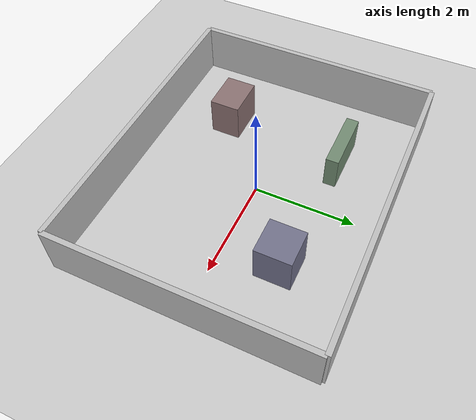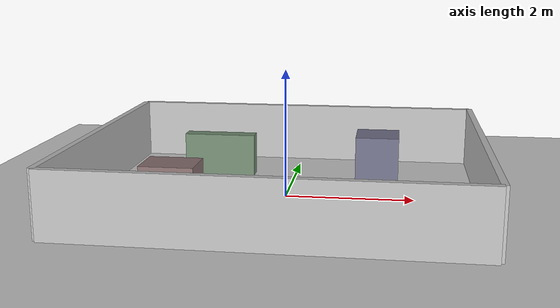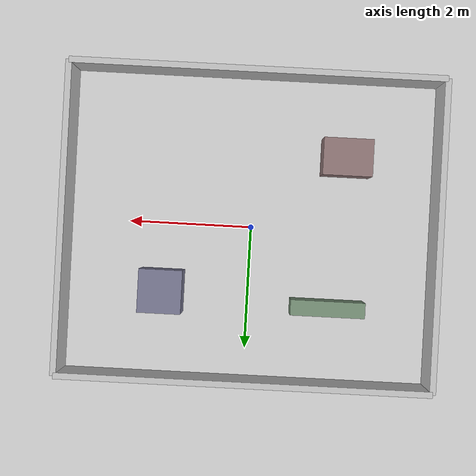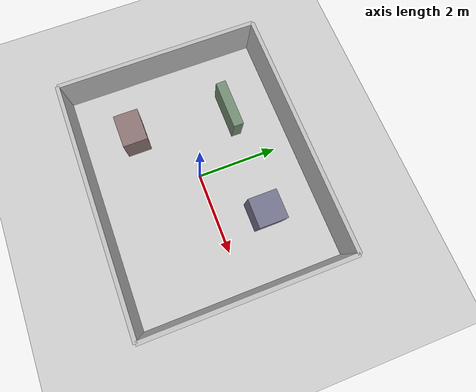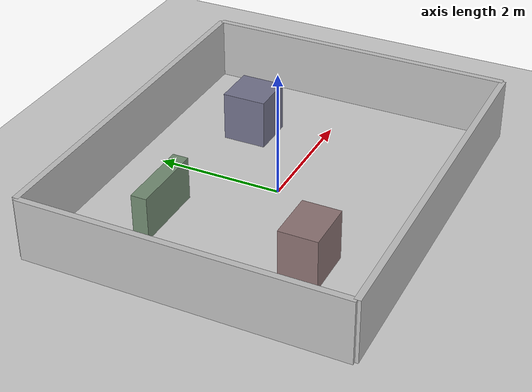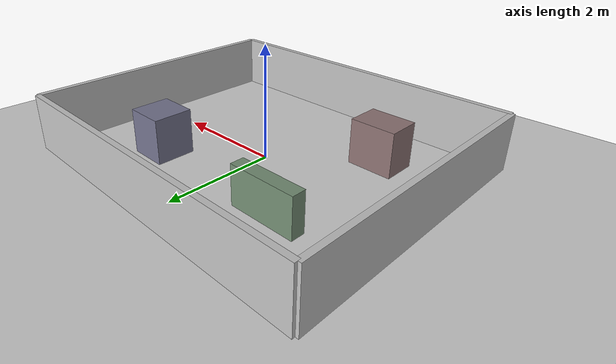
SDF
<?xml version="1.0" ?>
<sdf version="1.6">

  <world name="default">

    <!-- Stable physics                    -->

    <physics name="stable_physics" type="ode">

      <max_step_size>0.0005</max_step_size>
      <real_time_update_rate>1000</real_time_update_rate>

      <ode>
        <solver>
          <type>quick</type>
          <iters>100</iters>
        </solver>
      </ode>

    </physics>

    <!-- Scene                             -->

    <scene>

      <ambient>0.8 0.8 0.8 1</ambient>

      <background>0.85 0.85 0.85 1</background>

      <shadows>true</shadows>

    </scene>

    <!-- Lighting                          -->

    <light name="sun" type="directional">

      <cast_shadows>true</cast_shadows>

      <pose>0 0 10 0 0 0</pose>

      <diffuse>0.9 0.9 0.9 1</diffuse>

      <specular>0.3 0.3 0.3 1</specular>

      <attenuation>
        <range>1000</range>
        <constant>0.9</constant>
        <linear>0.01</linear>
        <quadratic>0.001</quadratic>
      </attenuation>

      <direction>-0.5 0.1 -0.9</direction>

    </light>

    <!-- Ground                            -->

    <include>
      <uri>model://ground_plane</uri>
    </include>

    <!-- Navigation Arena                  -->

    <!-- North wall -->

    <model name="north_wall">

      <static>true</static>

      <pose>0 2.5 0.5 0 0 0</pose>

      <link name="link">

        <collision name="collision">
          <geometry>
            <box>
              <size>6.0 0.10 1.0</size>
            </box>
          </geometry>
        </collision>

        <visual name="visual">
          <geometry>
            <box>
              <size>6.0 0.10 1.0</size>
            </box>
          </geometry>

          <material>
            <ambient>0.75 0.75 0.75 1</ambient>
            <diffuse>0.75 0.75 0.75 1</diffuse>
          </material>

        </visual>

      </link>

    </model>

    <!-- South wall -->

    <model name="south_wall">

      <static>true</static>

      <pose>0 -2.5 0.5 0 0 0</pose>

      <link name="link">

        <collision name="collision">
          <geometry>
            <box>
              <size>6.0 0.10 1.0</size>
            </box>
          </geometry>
        </collision>

        <visual name="visual">
          <geometry>
            <box>
              <size>6.0 0.10 1.0</size>
            </box>
          </geometry>

          <material>
            <ambient>0.75 0.75 0.75 1</ambient>
            <diffuse>0.75 0.75 0.75 1</diffuse>
          </material>

        </visual>

      </link>

    </model>

    <!-- East wall -->

    <model name="east_wall">

      <static>true</static>

      <pose>3.0 0 0.5 0 0 0</pose>

      <link name="link">

        <collision name="collision">
          <geometry>
            <box>
              <size>0.10 5.0 1.0</size>
            </box>
          </geometry>
        </collision>

        <visual name="visual">
          <geometry>
            <box>
              <size>0.10 5.0 1.0</size>
            </box>
          </geometry>

          <material>
            <ambient>0.75 0.75 0.75 1</ambient>
            <diffuse>0.75 0.75 0.75 1</diffuse>
          </material>

        </visual>

      </link>

    </model>

    <!-- West wall -->

    <model name="west_wall">

      <static>true</static>

      <pose>-3.0 0 0.5 0 0 0</pose>

      <link name="link">

        <collision name="collision">
          <geometry>
            <box>
              <size>0.10 5.0 1.0</size>
            </box>
          </geometry>
        </collision>

        <visual name="visual">
          <geometry>
            <box>
              <size>0.10 5.0 1.0</size>
            </box>
          </geometry>

          <material>
            <ambient>0.75 0.75 0.75 1</ambient>
            <diffuse>0.75 0.75 0.75 1</diffuse>
          </material>

        </visual>

      </link>

    </model>

    <!-- Internal obstacles                -->

    <!-- Obstacle 1 -->

    <model name="obstacle_1">

      <static>true</static>

      <pose>1.4 1.1 0.4 0 0 0</pose>

      <link name="link">

        <collision name="collision">
          <geometry>
            <box>
              <size>0.7 0.7 0.8</size>
            </box>
          </geometry>
        </collision>

        <visual name="visual">
          <geometry>
            <box>
              <size>0.7 0.7 0.8</size>
            </box>
          </geometry>

          <material>
            <ambient>0.45 0.45 0.55 1</ambient>
            <diffuse>0.45 0.45 0.55 1</diffuse>
          </material>

        </visual>

      </link>

    </model>

    <!-- Obstacle 2 -->

    <model name="obstacle_2">

      <static>true</static>

      <pose>-1.5 -1.2 0.4 0 0 0</pose>

      <link name="link">

        <collision name="collision">
          <geometry>
            <box>
              <size>0.8 0.6 0.8</size>
            </box>
          </geometry>
        </collision>

        <visual name="visual">
          <geometry>
            <box>
              <size>0.8 0.6 0.8</size>
            </box>
          </geometry>

          <material>
            <ambient>0.55 0.45 0.45 1</ambient>
            <diffuse>0.55 0.45 0.45 1</diffuse>
          </material>

        </visual>

      </link>

    </model>

    <!-- Obstacle 3 - long divider -->

    <model name="obstacle_3">

      <static>true</static>

      <pose>-1.3 1.25 0.35 0 0 0</pose>

      <link name="link">

        <collision name="collision">
          <geometry>
            <box>
              <size>1.2 0.25 0.7</size>
            </box>
          </geometry>
        </collision>

        <visual name="visual">
          <geometry>
            <box>
              <size>1.2 0.25 0.7</size>
            </box>
          </geometry>

          <material>
            <ambient>0.45 0.55 0.45 1</ambient>
            <diffuse>0.45 0.55 0.45 1</diffuse>
          </material>

        </visual>

      </link>

    </model>

  </world>

</sdf>
